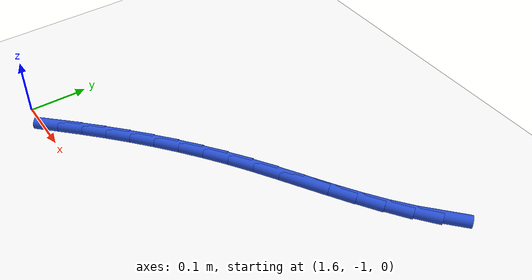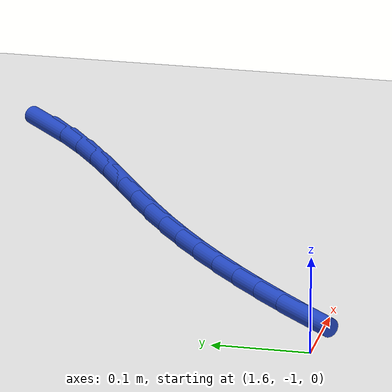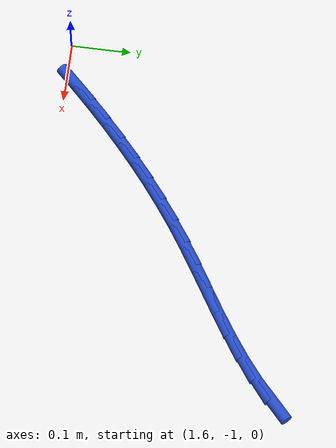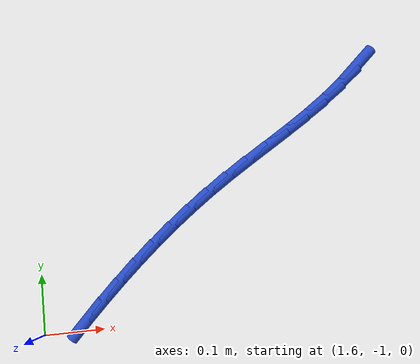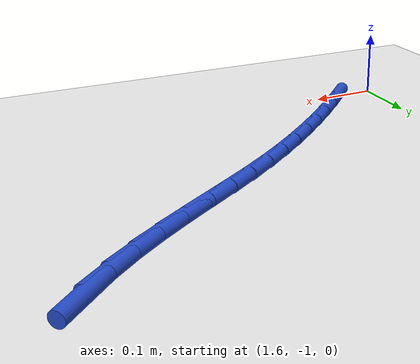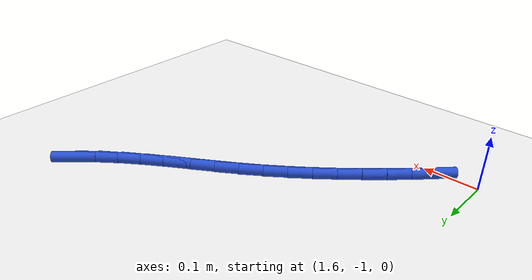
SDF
<sdf version="1.6">
 <world name="default">
  <model name="ground_plane">
   <static>1</static>
   <link name="link">
    <collision name="collision">
     <geometry><plane><normal>0 0 1</normal><size>100 100</size></plane></geometry>
     <surface><friction><ode><mu>100</mu><mu2>50</mu2></ode></friction></surface>
    </collision>
    <visual name="visual">
     <cast_shadows>0</cast_shadows>
     <geometry><plane><normal>0 0 1</normal><size>100 100</size></plane></geometry>
     <material>
      <script><uri>file://media/materials/scripts/gazebo.material</uri><name>Gazebo/WhiteGlow</name></script>
     </material>
    </visual>
   </link>
  </model>
  <model name="line">
   <link name="link_105">
    <pose>2.1800101635703473 -0.5925487962871873 0.01 0 1.57 0.744952542733622</pose>
    <collision name="collision">
     <geometry><cylinder><radius>0.01</radius><length>0.08</length></cylinder></geometry>
    </collision>
    <visual name="visual">
     <material>
      <script><name>Gazebo/Blue</name><uri>file://media/materials/scripts/gazebo.material</uri></script>
     </material>
     <geometry><cylinder><radius>0.01</radius><length>0.08</length></cylinder></geometry>
    </visual>
   </link>
   <link name="link_106">
    <pose>2.149400809126169 -0.6207771256190999 0.01 0 1.57 0.6720026262595425</pose>
    <collision name="collision">
     <geometry><cylinder><radius>0.01</radius><length>0.08</length></cylinder></geometry>
    </collision>
    <visual name="visual">
     <material>
      <script><name>Gazebo/Blue</name><uri>file://media/materials/scripts/gazebo.material</uri></script>
     </material>
     <geometry><cylinder><radius>0.01</radius><length>0.08</length></cylinder></geometry>
    </visual>
   </link>
   <link name="link_107">
    <pose>2.1164136917685443 -0.6470190031439502 0.01 0 1.57 0.6173249863186292</pose>
    <collision name="collision">
     <geometry><cylinder><radius>0.01</radius><length>0.08</length></cylinder></geometry>
    </collision>
    <visual name="visual">
     <material>
      <script><name>Gazebo/Blue</name><uri>file://media/materials/scripts/gazebo.material</uri></script>
     </material>
     <geometry><cylinder><radius>0.01</radius><length>0.08</length></cylinder></geometry>
    </visual>
   </link>
   <link name="link_108">
    <pose>2.0815978334015655 -0.671734026090863 0.01 0 1.57 0.5799822073647742</pose>
    <collision name="collision">
     <geometry><cylinder><radius>0.01</radius><length>0.08</length></cylinder></geometry>
    </collision>
    <visual name="visual">
     <material>
      <script><name>Gazebo/Blue</name><uri>file://media/materials/scripts/gazebo.material</uri></script>
     </material>
     <geometry><cylinder><radius>0.01</radius><length>0.08</length></cylinder></geometry>
    </visual>
   </link>
   <link name="link_109">
    <pose>2.0455022559293186 -0.6953817916889626 0.01 0 1.57 0.5590616518203869</pose>
    <collision name="collision">
     <geometry><cylinder><radius>0.01</radius><length>0.08</length></cylinder></geometry>
    </collision>
    <visual name="visual">
     <material>
      <script><name>Gazebo/Blue</name><uri>file://media/materials/scripts/gazebo.material</uri></script>
     </material>
     <geometry><cylinder><radius>0.01</radius><length>0.08</length></cylinder></geometry>
    </visual>
   </link>
   <link name="link_110">
    <pose>2.0086759812558945 -0.7184218971673726 0.01 0 1.57 0.5539628108301029</pose>
    <collision name="collision">
     <geometry><cylinder><radius>0.01</radius><length>0.08</length></cylinder></geometry>
    </collision>
    <visual name="visual">
     <material>
      <script><name>Gazebo/Blue</name><uri>file://media/materials/scripts/gazebo.material</uri></script>
     </material>
     <geometry><cylinder><radius>0.01</radius><length>0.08</length></cylinder></geometry>
    </visual>
   </link>
   <link name="link_111">
    <pose>1.9716680312853814 -0.7413139397552174 0.01 0 1.57 0.564527736181448</pose>
    <collision name="collision">
     <geometry><cylinder><radius>0.01</radius><length>0.08</length></cylinder></geometry>
    </collision>
    <visual name="visual">
     <material>
      <script><name>Gazebo/Blue</name><uri>file://media/materials/scripts/gazebo.material</uri></script>
     </material>
     <geometry><cylinder><radius>0.01</radius><length>0.08</length></cylinder></geometry>
    </visual>
   </link>
   <link name="link_112">
    <pose>1.935027427921868 -0.7645175166816216 0.01 0 1.57 0.5906053441591043</pose>
    <collision name="collision">
     <geometry><cylinder><radius>0.01</radius><length>0.08</length></cylinder></geometry>
    </collision>
    <visual name="visual">
     <material>
      <script><name>Gazebo/Blue</name><uri>file://media/materials/scripts/gazebo.material</uri></script>
     </material>
     <geometry><cylinder><radius>0.01</radius><length>0.08</length></cylinder></geometry>
    </visual>
   </link>
   <link name="link_113">
    <pose>1.8992863084326312 -0.788479532783216 0.01 0 1.57 0.623680234354082</pose>
    <collision name="collision">
     <geometry><cylinder><radius>0.01</radius><length>0.08</length></cylinder></geometry>
    </collision>
    <visual name="visual">
     <material>
      <script><name>Gazebo/Blue</name><uri>file://media/materials/scripts/gazebo.material</uri></script>
     </material>
     <geometry><cylinder><radius>0.01</radius><length>0.08</length></cylinder></geometry>
    </visual>
   </link>
   <link name="link_114">
    <pose>1.8646489288910284 -0.8134004205057449 0.01 0 1.57 0.6555053291118306</pose>
    <collision name="collision">
     <geometry><cylinder><radius>0.01</radius><length>0.08</length></cylinder></geometry>
    </collision>
    <visual name="visual">
     <material>
      <script><name>Gazebo/Blue</name><uri>file://media/materials/scripts/gazebo.material</uri></script>
     </material>
     <geometry><cylinder><radius>0.01</radius><length>0.08</length></cylinder></geometry>
    </visual>
   </link>
   <link name="link_115">
    <pose>1.8310221059355636 -0.8392570233547776 0.01 0 1.57 0.6855457514537058</pose>
    <collision name="collision">
     <geometry><cylinder><radius>0.01</radius><length>0.08</length></cylinder></geometry>
    </collision>
    <visual name="visual">
     <material>
      <script><name>Gazebo/Blue</name><uri>file://media/materials/scripts/gazebo.material</uri></script>
     </material>
     <geometry><cylinder><radius>0.01</radius><length>0.08</length></cylinder></geometry>
    </visual>
   </link>
   <link name="link_116">
    <pose>1.7983018780468125 -0.8660180827598739 0.01 0 1.57 0.7135956378012653</pose>
    <collision name="collision">
     <geometry><cylinder><radius>0.01</radius><length>0.08</length></cylinder></geometry>
    </collision>
    <visual name="visual">
     <material>
      <script><name>Gazebo/Blue</name><uri>file://media/materials/scripts/gazebo.material</uri></script>
     </material>
     <geometry><cylinder><radius>0.01</radius><length>0.08</length></cylinder></geometry>
    </visual>
   </link>
   <link name="link_117">
    <pose>1.7663842837053458 -0.8936523401505931 0.01 0 1.57 0.7394848956177927</pose>
    <collision name="collision">
     <geometry><cylinder><radius>0.01</radius><length>0.08</length></cylinder></geometry>
    </collision>
    <visual name="visual">
     <material>
      <script><name>Gazebo/Blue</name><uri>file://media/materials/scripts/gazebo.material</uri></script>
     </material>
     <geometry><cylinder><radius>0.01</radius><length>0.08</length></cylinder></geometry>
    </visual>
   </link>
   <link name="link_118">
    <pose>1.7351653613917366 -0.9221285369564958 0.01 0 1.57 0.763079889520717</pose>
    <collision name="collision">
     <geometry><cylinder><radius>0.01</radius><length>0.08</length></cylinder></geometry>
    </collision>
    <visual name="visual">
     <material>
      <script><name>Gazebo/Blue</name><uri>file://media/materials/scripts/gazebo.material</uri></script>
     </material>
     <geometry><cylinder><radius>0.01</radius><length>0.08</length></cylinder></geometry>
    </visual>
   </link>
   <link name="link_119">
    <pose>1.7045411495865572 -0.9514154146071411 0.01 0 1.57 0.7842824968183109</pose>
    <collision name="collision">
     <geometry><cylinder><radius>0.01</radius><length>0.08</length></cylinder></geometry>
    </collision>
    <visual name="visual">
     <material>
      <script><name>Gazebo/Blue</name><uri>file://media/materials/scripts/gazebo.material</uri></script>
     </material>
     <geometry><cylinder><radius>0.01</radius><length>0.08</length></cylinder></geometry>
    </visual>
   </link>
   <link name="link_120">
    <pose>1.6744076867703799 -0.98148171453209 0.01 0 1.57 0.8030279119829922</pose>
    <collision name="collision">
     <geometry><cylinder><radius>0.01</radius><length>0.08</length></cylinder></geometry>
    </collision>
    <visual name="visual">
     <material>
      <script><name>Gazebo/Blue</name><uri>file://media/materials/scripts/gazebo.material</uri></script>
     </material>
     <geometry><cylinder><radius>0.01</radius><length>0.08</length></cylinder></geometry>
    </visual>
   </link>
  </model>
 </world>
</sdf>
